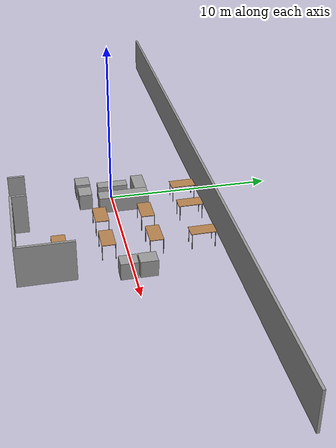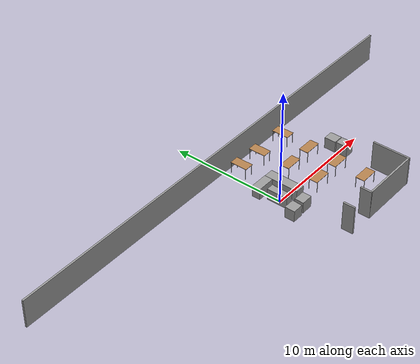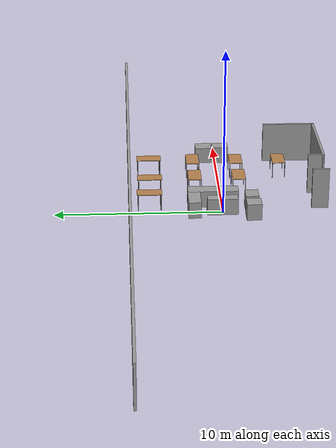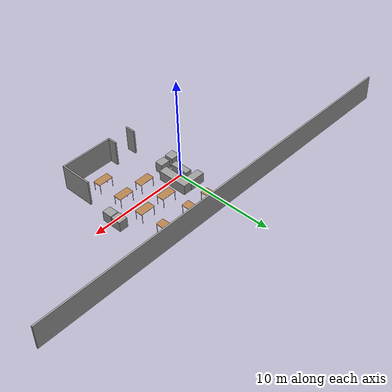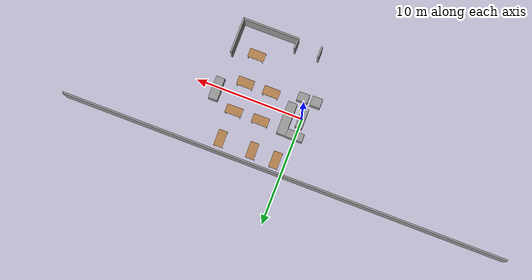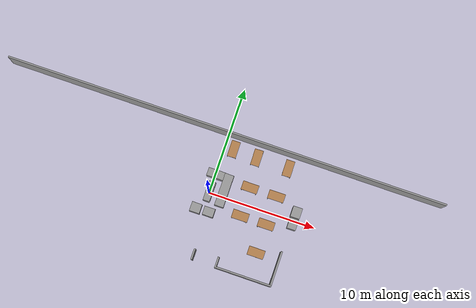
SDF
<sdf version="1.7">
 <model name="turtlebot3_world_V3">
  <link name="link_0_clone">
   <inertial>
    <mass>2.54901</mass>
    <inertia><ixx>2.15345</ixx><ixy>0</ixy><ixz>0</ixz><iyy>0.363547</iyy><iyz>0</iyz><izz>2.09216</izz></inertia>
   </inertial>
   <pose>1.24013 0.549487 0.5 0 -0 0</pose>
   <visual name="visual">
    <geometry><box><size>0.843491 3.02289 1</size></box></geometry>
    <material>
     <lighting>1</lighting>
     <script><uri>file://media/materials/scripts/gazebo.material</uri><name>Gazebo/Grey</name></script>
     <shader type="pixel"/>
    </material>
   </visual>
   <collision name="collision">
    <geometry><box><size>0.843491 3.02289 1</size></box></geometry>
    <surface>
     <friction>
      <ode><mu>1</mu><mu2>1</mu2><fdir1>0 0 0</fdir1><slip1>0</slip1><slip2>0</slip2></ode>
      <torsional>
       <coefficient>1</coefficient>
       <patch_radius>0</patch_radius>
       <surface_radius>0</surface_radius>
       <use_patch_radius>1</use_patch_radius>
       <ode><slip>0</slip></ode>
      </torsional>
     </friction>
     <bounce><restitution_coefficient>0</restitution_coefficient><threshold>1e+06</threshold></bounce>
     <contact>
      <collide_without_contact>0</collide_without_contact>
      <collide_without_contact_bitmask>1</collide_without_contact_bitmask>
      <collide_bitmask>1</collide_bitmask>
      <ode>
       <soft_cfm>0</soft_cfm>
       <soft_erp>0.2</soft_erp>
       <kp>1e+13</kp>
       <kd>1</kd>
       <max_vel>0.01</max_vel>
       <min_depth>0</min_depth>
      </ode>
      <bullet>
       <split_impulse>1</split_impulse>
       <split_impulse_penetration_threshold>-0.01</split_impulse_penetration_threshold>
       <soft_cfm>0</soft_cfm>
       <soft_erp>0.2</soft_erp>
       <kp>1e+13</kp>
       <kd>1</kd>
      </bullet>
     </contact>
    </surface>
   </collision>
  </link>
  <link name="link_1">
   <inertial>
    <mass>1.15926</mass>
    <inertia>
     <ixx>0.149986</ixx>
     <ixy>0</ixy>
     <ixz>0</ixz>
     <iyy>0.331691</iyy>
     <iyz>0</iyz>
     <izz>0.288468</izz>
    </inertia>
   </inertial>
   <pose>0.051476 1.71415 0.5 0 -0 0</pose>
   <visual name="visual">
    <geometry><box><size>1.55997 0.743356 1</size></box></geometry>
    <material>
     <lighting>1</lighting>
     <script><uri>file://media/materials/scripts/gazebo.material</uri><name>Gazebo/Grey</name></script>
     <shader type="pixel"/>
    </material>
   </visual>
   <collision name="collision">
    <geometry><box><size>1.55997 0.743356 1</size></box></geometry>
    <surface>
     <friction>
      <ode><mu>1</mu><mu2>1</mu2><fdir1>0 0 0</fdir1><slip1>0</slip1><slip2>0</slip2></ode>
      <torsional>
       <coefficient>1</coefficient>
       <patch_radius>0</patch_radius>
       <surface_radius>0</surface_radius>
       <use_patch_radius>1</use_patch_radius>
       <ode><slip>0</slip></ode>
      </torsional>
     </friction>
     <bounce><restitution_coefficient>0</restitution_coefficient><threshold>1e+06</threshold></bounce>
     <contact>
      <collide_without_contact>0</collide_without_contact>
      <collide_without_contact_bitmask>1</collide_without_contact_bitmask>
      <collide_bitmask>1</collide_bitmask>
      <ode>
       <soft_cfm>0</soft_cfm>
       <soft_erp>0.2</soft_erp>
       <kp>1e+13</kp>
       <kd>1</kd>
       <max_vel>0.01</max_vel>
       <min_depth>0</min_depth>
      </ode>
      <bullet>
       <split_impulse>1</split_impulse>
       <split_impulse_penetration_threshold>-0.01</split_impulse_penetration_threshold>
       <soft_cfm>0</soft_cfm>
       <soft_erp>0.2</soft_erp>
       <kp>1e+13</kp>
       <kd>1</kd>
      </bullet>
     </contact>
    </surface>
   </collision>
  </link>
  <link name="link_10">
   <inertial>
    <mass>0.858538</mass>
    <inertia>
     <ixx>0.14309</ixx>
     <ixy>0</ixy>
     <ixz>0</ixz>
     <iyy>0.124282</iyy>
     <iyz>0</iyz>
     <izz>0.124282</izz>
    </inertia>
   </inertial>
   <pose>8.01063 0.76269 0.5 0 -0 0</pose>
   <visual name="visual">
    <geometry><box><size>0.858553 1 1</size></box></geometry>
    <material>
     <lighting>1</lighting>
     <script><uri>file://media/materials/scripts/gazebo.material</uri><name>Gazebo/Grey</name></script>
     <shader type="pixel"/>
    </material>
   </visual>
   <collision name="collision">
    <geometry><box><size>0.858553 1 1</size></box></geometry>
    <surface>
     <friction>
      <ode><mu>1</mu><mu2>1</mu2><fdir1>0 0 0</fdir1><slip1>0</slip1><slip2>0</slip2></ode>
      <torsional>
       <coefficient>1</coefficient>
       <patch_radius>0</patch_radius>
       <surface_radius>0</surface_radius>
       <use_patch_radius>1</use_patch_radius>
       <ode><slip>0</slip></ode>
      </torsional>
     </friction>
     <bounce><restitution_coefficient>0</restitution_coefficient><threshold>1e+06</threshold></bounce>
     <contact>
      <collide_without_contact>0</collide_without_contact>
      <collide_without_contact_bitmask>1</collide_without_contact_bitmask>
      <collide_bitmask>1</collide_bitmask>
      <ode>
       <soft_cfm>0</soft_cfm>
       <soft_erp>0.2</soft_erp>
       <kp>1e+13</kp>
       <kd>1</kd>
       <max_vel>0.01</max_vel>
       <min_depth>0</min_depth>
      </ode>
      <bullet>
       <split_impulse>1</split_impulse>
       <split_impulse_penetration_threshold>-0.01</split_impulse_penetration_threshold>
       <soft_cfm>0</soft_cfm>
       <soft_erp>0.2</soft_erp>
       <kp>1e+13</kp>
       <kd>1</kd>
      </bullet>
     </contact>
    </surface>
   </collision>
  </link>
  <link name="link_11">
   <inertial>
    <mass>0.829607</mass>
    <inertia>
     <ixx>0.14157</ixx>
     <ixy>0</ixy>
     <ixz>0</ixz>
     <iyy>0.117869</iyy>
     <iyz>0</iyz>
     <izz>0.114567</izz>
    </inertia>
   </inertial>
   <pose>8.02619 -0.313969 0.5 0 -0 0</pose>
   <visual name="visual">
    <geometry><box><size>0.81066 1 1.0236</size></box></geometry>
    <material>
     <lighting>1</lighting>
     <script><uri>file://media/materials/scripts/gazebo.material</uri><name>Gazebo/Grey</name></script>
     <shader type="pixel"/>
    </material>
   </visual>
   <collision name="collision">
    <geometry><box><size>0.81066 1 1.0236</size></box></geometry>
    <surface>
     <friction>
      <ode><mu>1</mu><mu2>1</mu2><fdir1>0 0 0</fdir1><slip1>0</slip1><slip2>0</slip2></ode>
      <torsional>
       <coefficient>1</coefficient>
       <patch_radius>0</patch_radius>
       <surface_radius>0</surface_radius>
       <use_patch_radius>1</use_patch_radius>
       <ode><slip>0</slip></ode>
      </torsional>
     </friction>
     <bounce><restitution_coefficient>0</restitution_coefficient><threshold>1e+06</threshold></bounce>
     <contact>
      <collide_without_contact>0</collide_without_contact>
      <collide_without_contact_bitmask>1</collide_without_contact_bitmask>
      <collide_bitmask>1</collide_bitmask>
      <ode>
       <soft_cfm>0</soft_cfm>
       <soft_erp>0.2</soft_erp>
       <kp>1e+13</kp>
       <kd>1</kd>
       <max_vel>0.01</max_vel>
       <min_depth>0</min_depth>
      </ode>
      <bullet>
       <split_impulse>1</split_impulse>
       <split_impulse_penetration_threshold>-0.01</split_impulse_penetration_threshold>
       <soft_cfm>0</soft_cfm>
       <soft_erp>0.2</soft_erp>
       <kp>1e+13</kp>
       <kd>1</kd>
      </bullet>
     </contact>
    </surface>
   </collision>
  </link>
  <link name="link_2">
   <inertial>
    <mass>1.15777</mass>
    <inertia>
     <ixx>0.418048</ixx>
     <ixy>0</ixy>
     <ixz>0</ixz>
     <iyy>0.135287</iyy>
     <iyz>0</iyz>
     <izz>0.360373</izz>
    </inertia>
   </inertial>
   <pose>0.004407 0.050983 0.5 0 -0 0</pose>
   <visual name="visual">
    <geometry><box><size>0.634205 1.82564 1</size></box></geometry>
    <material>
     <lighting>1</lighting>
     <script><uri>file://media/materials/scripts/gazebo.material</uri><name>Gazebo/Grey</name></script>
     <shader type="pixel"/>
    </material>
   </visual>
   <collision name="collision">
    <geometry><box><size>0.634205 1.82564 1</size></box></geometry>
    <surface>
     <friction>
      <ode><mu>1</mu><mu2>1</mu2><fdir1>0 0 0</fdir1><slip1>0</slip1><slip2>0</slip2></ode>
      <torsional>
       <coefficient>1</coefficient>
       <patch_radius>0</patch_radius>
       <surface_radius>0</surface_radius>
       <use_patch_radius>1</use_patch_radius>
       <ode><slip>0</slip></ode>
      </torsional>
     </friction>
     <bounce><restitution_coefficient>0</restitution_coefficient><threshold>1e+06</threshold></bounce>
     <contact>
      <collide_without_contact>0</collide_without_contact>
      <collide_without_contact_bitmask>1</collide_without_contact_bitmask>
      <collide_bitmask>1</collide_bitmask>
      <ode>
       <soft_cfm>0</soft_cfm>
       <soft_erp>0.2</soft_erp>
       <kp>1e+13</kp>
       <kd>1</kd>
       <max_vel>0.01</max_vel>
       <min_depth>0</min_depth>
      </ode>
      <bullet>
       <split_impulse>1</split_impulse>
       <split_impulse_penetration_threshold>-0.01</split_impulse_penetration_threshold>
       <soft_cfm>0</soft_cfm>
       <soft_erp>0.2</soft_erp>
       <kp>1e+13</kp>
       <kd>1</kd>
      </bullet>
     </contact>
    </surface>
   </collision>
  </link>
  <link name="link_3">
   <inertial>
    <mass>0.787073</mass>
    <inertia>
     <ixx>0.106222</ixx>
     <ixy>0</ixy>
     <ixz>0</ixz>
     <iyy>0.131179</iyy>
     <iyz>0</iyz>
     <izz>0.106222</izz>
    </inertia>
   </inertial>
   <pose>0.554076 -1.72385 0.5 0 -0 0</pose>
   <visual name="visual">
    <geometry><box><size>1 0.787081 1</size></box></geometry>
    <material>
     <lighting>1</lighting>
     <script><uri>file://media/materials/scripts/gazebo.material</uri><name>Gazebo/Grey</name></script>
     <shader type="pixel"/>
    </material>
   </visual>
   <collision name="collision">
    <geometry><box><size>1 0.787081 1</size></box></geometry>
    <surface>
     <friction>
      <ode><mu>1</mu><mu2>1</mu2><fdir1>0 0 0</fdir1><slip1>0</slip1><slip2>0</slip2></ode>
      <torsional>
       <coefficient>1</coefficient>
       <patch_radius>0</patch_radius>
       <surface_radius>0</surface_radius>
       <use_patch_radius>1</use_patch_radius>
       <ode><slip>0</slip></ode>
      </torsional>
     </friction>
     <bounce><restitution_coefficient>0</restitution_coefficient><threshold>1e+06</threshold></bounce>
     <contact>
      <collide_without_contact>0</collide_without_contact>
      <collide_without_contact_bitmask>1</collide_without_contact_bitmask>
      <collide_bitmask>1</collide_bitmask>
      <ode>
       <soft_cfm>0</soft_cfm>
       <soft_erp>0.2</soft_erp>
       <kp>1e+13</kp>
       <kd>1</kd>
       <max_vel>0.01</max_vel>
       <min_depth>0</min_depth>
      </ode>
      <bullet>
       <split_impulse>1</split_impulse>
       <split_impulse_penetration_threshold>-0.01</split_impulse_penetration_threshold>
       <soft_cfm>0</soft_cfm>
       <soft_erp>0.2</soft_erp>
       <kp>1e+13</kp>
       <kd>1</kd>
      </bullet>
     </contact>
    </surface>
   </collision>
  </link>
  <link name="link_4">
   <inertial>
    <mass>0.823135</mass>
    <inertia>
     <ixx>0.12112</ixx>
     <ixy>0</ixy>
     <ixz>0</ixz>
     <iyy>0.129293</iyy>
     <iyz>0</iyz>
     <izz>0.113223</izz>
    </inertia>
   </inertial>
   <pose>-0.670921 -1.74276 0.5 0 -0 0</pose>
   <visual name="visual">
    <geometry><box><size>0.940681 0.875064 1</size></box></geometry>
    <material>
     <lighting>1</lighting>
     <script><uri>file://media/materials/scripts/gazebo.material</uri><name>Gazebo/Grey</name></script>
     <shader type="pixel"/>
    </material>
   </visual>
   <collision name="collision">
    <geometry><box><size>0.940681 0.875064 1</size></box></geometry>
    <surface>
     <friction>
      <ode><mu>1</mu><mu2>1</mu2><fdir1>0 0 0</fdir1><slip1>0</slip1><slip2>0</slip2></ode>
      <torsional>
       <coefficient>1</coefficient>
       <patch_radius>0</patch_radius>
       <surface_radius>0</surface_radius>
       <use_patch_radius>1</use_patch_radius>
       <ode><slip>0</slip></ode>
      </torsional>
     </friction>
     <bounce><restitution_coefficient>0</restitution_coefficient><threshold>1e+06</threshold></bounce>
     <contact>
      <collide_without_contact>0</collide_without_contact>
      <collide_without_contact_bitmask>1</collide_without_contact_bitmask>
      <collide_bitmask>1</collide_bitmask>
      <ode>
       <soft_cfm>0</soft_cfm>
       <soft_erp>0.2</soft_erp>
       <kp>1e+13</kp>
       <kd>1</kd>
       <max_vel>0.01</max_vel>
       <min_depth>0</min_depth>
      </ode>
      <bullet>
       <split_impulse>1</split_impulse>
       <split_impulse_penetration_threshold>-0.01</split_impulse_penetration_threshold>
       <soft_cfm>0</soft_cfm>
       <soft_erp>0.2</soft_erp>
       <kp>1e+13</kp>
       <kd>1</kd>
      </bullet>
     </contact>
    </surface>
   </collision>
  </link>
  <link name="turtlebot3_world_1::The_Project_Hub_Building::Wall_10">
   <pose>7.84408 -4.67436 0 0 -0 1.5708</pose>
   <visual name="Wall_10_Visual">
    <pose>0 0 1.25 0 -0 0</pose>
    <geometry><box><size>3.25 0.15 2.5</size></box></geometry>
    <material>
     <script><uri>file://media/materials/scripts/gazebo.material</uri><name>Gazebo/Grey</name></script>
     <ambient>1 1 1 1</ambient>
     <shader type="pixel"/>
    </material>
    <meta><layer>0</layer></meta>
   </visual>
   <collision name="Wall_10_Collision">
    <pose>0 0 1.25 0 -0 0</pose>
    <geometry><box><size>3.25 0.15 2.5</size></box></geometry>
    <surface>
     <friction>
      <ode><mu>1</mu><mu2>1</mu2><fdir1>0 0 0</fdir1><slip1>0</slip1><slip2>0</slip2></ode>
      <torsional>
       <coefficient>1</coefficient>
       <patch_radius>0</patch_radius>
       <surface_radius>0</surface_radius>
       <use_patch_radius>1</use_patch_radius>
       <ode><slip>0</slip></ode>
      </torsional>
     </friction>
     <bounce><restitution_coefficient>0</restitution_coefficient><threshold>1e+06</threshold></bounce>
     <contact>
      <collide_without_contact>0</collide_without_contact>
      <collide_without_contact_bitmask>1</collide_without_contact_bitmask>
      <collide_bitmask>1</collide_bitmask>
      <ode>
       <soft_cfm>0</soft_cfm>
       <soft_erp>0.2</soft_erp>
       <kp>1e+13</kp>
       <kd>1</kd>
       <max_vel>0.01</max_vel>
       <min_depth>0</min_depth>
      </ode>
      <bullet>
       <split_impulse>1</split_impulse>
       <split_impulse_penetration_threshold>-0.01</split_impulse_penetration_threshold>
       <soft_cfm>0</soft_cfm>
       <soft_erp>0.2</soft_erp>
       <kp>1e+13</kp>
       <kd>1</kd>
      </bullet>
     </contact>
    </surface>
   </collision>
  </link>
  <link name="turtlebot3_world_1::The_Project_Hub_Building::Wall_13">
   <pose>-0.327684 5.5353 0 0 -0 0</pose>
   <visual name="Wall_13_Visual">
    <pose>0 0 1.25 0 -0 0</pose>
    <geometry><box><size>41.25 0.15 2.5</size></box></geometry>
    <material>
     <script><uri>file://media/materials/scripts/gazebo.material</uri><name>Gazebo/Grey</name></script>
     <ambient>1 1 1 1</ambient>
     <shader type="pixel"/>
    </material>
    <meta><layer>0</layer></meta>
   </visual>
   <collision name="Wall_13_Collision">
    <pose>0 0 1.25 0 -0 0</pose>
    <geometry><box><size>41.25 0.15 2.5</size></box></geometry>
    <surface>
     <friction>
      <ode><mu>1</mu><mu2>1</mu2><fdir1>0 0 0</fdir1><slip1>0</slip1><slip2>0</slip2></ode>
      <torsional>
       <coefficient>1</coefficient>
       <patch_radius>0</patch_radius>
       <surface_radius>0</surface_radius>
       <use_patch_radius>1</use_patch_radius>
       <ode><slip>0</slip></ode>
      </torsional>
     </friction>
     <bounce><restitution_coefficient>0</restitution_coefficient><threshold>1e+06</threshold></bounce>
     <contact>
      <collide_without_contact>0</collide_without_contact>
      <collide_without_contact_bitmask>1</collide_without_contact_bitmask>
      <collide_bitmask>1</collide_bitmask>
      <ode>
       <soft_cfm>0</soft_cfm>
       <soft_erp>0.2</soft_erp>
       <kp>1e+13</kp>
       <kd>1</kd>
       <max_vel>0.01</max_vel>
       <min_depth>0</min_depth>
      </ode>
      <bullet>
       <split_impulse>1</split_impulse>
       <split_impulse_penetration_threshold>-0.01</split_impulse_penetration_threshold>
       <soft_cfm>0</soft_cfm>
       <soft_erp>0.2</soft_erp>
       <kp>1e+13</kp>
       <kd>1</kd>
      </bullet>
     </contact>
    </surface>
   </collision>
  </link>
  <link name="turtlebot3_world_1::The_Project_Hub_Building::Wall_6">
   <pose>0.535777 -5.79277 0 0 -0 1.5708</pose>
   <visual name="Wall_6_Visual">
    <pose>0 0 1.25 0 -0 0</pose>
    <geometry><box><size>1 0.15 2.5</size></box></geometry>
    <material>
     <script><uri>file://media/materials/scripts/gazebo.material</uri><name>Gazebo/Grey</name></script>
     <ambient>1 1 1 1</ambient>
     <shader type="pixel"/>
    </material>
    <meta><layer>0</layer></meta>
   </visual>
   <collision name="Wall_6_Collision">
    <pose>0 0 1.25 0 -0 0</pose>
    <geometry><box><size>1 0.15 2.5</size></box></geometry>
    <surface>
     <friction>
      <ode><mu>1</mu><mu2>1</mu2><fdir1>0 0 0</fdir1><slip1>0</slip1><slip2>0</slip2></ode>
      <torsional>
       <coefficient>1</coefficient>
       <patch_radius>0</patch_radius>
       <surface_radius>0</surface_radius>
       <use_patch_radius>1</use_patch_radius>
       <ode><slip>0</slip></ode>
      </torsional>
     </friction>
     <bounce><restitution_coefficient>0</restitution_coefficient><threshold>1e+06</threshold></bounce>
     <contact>
      <collide_without_contact>0</collide_without_contact>
      <collide_without_contact_bitmask>1</collide_without_contact_bitmask>
      <collide_bitmask>1</collide_bitmask>
      <ode>
       <soft_cfm>0</soft_cfm>
       <soft_erp>0.2</soft_erp>
       <kp>1e+13</kp>
       <kd>1</kd>
       <max_vel>0.01</max_vel>
       <min_depth>0</min_depth>
      </ode>
      <bullet>
       <split_impulse>1</split_impulse>
       <split_impulse_penetration_threshold>-0.01</split_impulse_penetration_threshold>
       <soft_cfm>0</soft_cfm>
       <soft_erp>0.2</soft_erp>
       <kp>1e+13</kp>
       <kd>1</kd>
      </bullet>
     </contact>
    </surface>
   </collision>
  </link>
  <link name="turtlebot3_world_1::The_Project_Hub_Building::Wall_8">
   <pose>2.74408 -5.79936 0 0 0 -1.5708</pose>
   <visual name="Wall_8_Visual">
    <pose>0 0 1.25 0 -0 0</pose>
    <geometry><box><size>1 0.15 2.5</size></box></geometry>
    <material>
     <script><uri>file://media/materials/scripts/gazebo.material</uri><name>Gazebo/Grey</name></script>
     <ambient>1 1 1 1</ambient>
     <shader type="pixel"/>
    </material>
    <meta><layer>0</layer></meta>
   </visual>
   <collision name="Wall_8_Collision">
    <pose>0 0 1.25 0 -0 0</pose>
    <geometry><box><size>1 0.15 2.5</size></box></geometry>
    <surface>
     <friction>
      <ode><mu>1</mu><mu2>1</mu2><fdir1>0 0 0</fdir1><slip1>0</slip1><slip2>0</slip2></ode>
      <torsional>
       <coefficient>1</coefficient>
       <patch_radius>0</patch_radius>
       <surface_radius>0</surface_radius>
       <use_patch_radius>1</use_patch_radius>
       <ode><slip>0</slip></ode>
      </torsional>
     </friction>
     <bounce><restitution_coefficient>0</restitution_coefficient><threshold>1e+06</threshold></bounce>
     <contact>
      <collide_without_contact>0</collide_without_contact>
      <collide_without_contact_bitmask>1</collide_without_contact_bitmask>
      <collide_bitmask>1</collide_bitmask>
      <ode>
       <soft_cfm>0</soft_cfm>
       <soft_erp>0.2</soft_erp>
       <kp>1e+13</kp>
       <kd>1</kd>
       <max_vel>0.01</max_vel>
       <min_depth>0</min_depth>
      </ode>
      <bullet>
       <split_impulse>1</split_impulse>
       <split_impulse_penetration_threshold>-0.01</split_impulse_penetration_threshold>
       <soft_cfm>0</soft_cfm>
       <soft_erp>0.2</soft_erp>
       <kp>1e+13</kp>
       <kd>1</kd>
      </bullet>
     </contact>
    </surface>
   </collision>
  </link>
  <link name="turtlebot3_world_1::The_Project_Hub_Building::Wall_9">
   <pose>5.29408 -6.22436 0 0 -0 0</pose>
   <visual name="Wall_9_Visual">
    <pose>0 0 1.25 0 -0 0</pose>
    <geometry><box><size>5.25 0.15 2.5</size></box></geometry>
    <material>
     <script><uri>file://media/materials/scripts/gazebo.material</uri><name>Gazebo/Grey</name></script>
     <ambient>1 1 1 1</ambient>
     <shader type="pixel"/>
    </material>
    <meta><layer>0</layer></meta>
   </visual>
   <collision name="Wall_9_Collision">
    <pose>0 0 1.25 0 -0 0</pose>
    <geometry><box><size>5.25 0.15 2.5</size></box></geometry>
    <surface>
     <friction>
      <ode><mu>1</mu><mu2>1</mu2><fdir1>0 0 0</fdir1><slip1>0</slip1><slip2>0</slip2></ode>
      <torsional>
       <coefficient>1</coefficient>
       <patch_radius>0</patch_radius>
       <surface_radius>0</surface_radius>
       <use_patch_radius>1</use_patch_radius>
       <ode><slip>0</slip></ode>
      </torsional>
     </friction>
     <bounce><restitution_coefficient>0</restitution_coefficient><threshold>1e+06</threshold></bounce>
     <contact>
      <collide_without_contact>0</collide_without_contact>
      <collide_without_contact_bitmask>1</collide_without_contact_bitmask>
      <collide_bitmask>1</collide_bitmask>
      <ode>
       <soft_cfm>0</soft_cfm>
       <soft_erp>0.2</soft_erp>
       <kp>1e+13</kp>
       <kd>1</kd>
       <max_vel>0.01</max_vel>
       <min_depth>0</min_depth>
      </ode>
      <bullet>
       <split_impulse>1</split_impulse>
       <split_impulse_penetration_threshold>-0.01</split_impulse_penetration_threshold>
       <soft_cfm>0</soft_cfm>
       <soft_erp>0.2</soft_erp>
       <kp>1e+13</kp>
       <kd>1</kd>
      </bullet>
     </contact>
    </surface>
   </collision>
  </link>
  <model name="table_0_clone_3">
   <static>1</static>
   <link name="link">
    <collision name="surface">
     <pose>0 0 1 0 -0 0</pose>
     <geometry><box><size>1.5 0.8 0.03</size></box></geometry>
     <surface><friction><ode><mu>0.6</mu><mu2>0.6</mu2></ode></friction></surface>
    </collision>
    <visual name="visual1">
     <pose>0 0 1 0 -0 0</pose>
     <geometry><box><size>1.5 0.8 0.03</size></box></geometry>
     <material>
      <script><uri>file://media/materials/scripts/gazebo.material</uri><name>Gazebo/Wood</name></script>
     </material>
    </visual>
    <collision name="front_left_leg">
     <pose>0.68 0.38 0.5 0 -0 0</pose>
     <geometry><cylinder><radius>0.02</radius><length>1</length></cylinder></geometry>
    </collision>
    <visual name="front_left_leg">
     <pose>0.68 0.38 0.5 0 -0 0</pose>
     <geometry><cylinder><radius>0.02</radius><length>1</length></cylinder></geometry>
     <material>
      <script><uri>file://media/materials/scripts/gazebo.material</uri><name>Gazebo/Grey</name></script>
     </material>
    </visual>
    <collision name="front_right_leg">
     <pose>0.68 -0.38 0.5 0 -0 0</pose>
     <geometry><cylinder><radius>0.02</radius><length>1</length></cylinder></geometry>
    </collision>
    <visual name="front_right_leg">
     <pose>0.68 -0.38 0.5 0 -0 0</pose>
     <geometry><cylinder><radius>0.02</radius><length>1</length></cylinder></geometry>
     <material>
      <script><uri>file://media/materials/scripts/gazebo.material</uri><name>Gazebo/Grey</name></script>
     </material>
    </visual>
    <collision name="back_right_leg">
     <pose>-0.68 -0.38 0.5 0 -0 0</pose>
     <geometry><cylinder><radius>0.02</radius><length>1</length></cylinder></geometry>
    </collision>
    <visual name="back_right_leg">
     <pose>-0.68 -0.38 0.5 0 -0 0</pose>
     <geometry><cylinder><radius>0.02</radius><length>1</length></cylinder></geometry>
     <material>
      <script><uri>file://media/materials/scripts/gazebo.material</uri><name>Gazebo/Grey</name></script>
     </material>
    </visual>
    <collision name="back_left_leg">
     <pose>-0.68 0.38 0.5 0 -0 0</pose>
     <geometry><cylinder><radius>0.02</radius><length>1</length></cylinder></geometry>
    </collision>
    <visual name="back_left_leg">
     <pose>-0.68 0.38 0.5 0 -0 0</pose>
     <geometry><cylinder><radius>0.02</radius><length>1</length></cylinder></geometry>
     <material>
      <script><uri>file://media/materials/scripts/gazebo.material</uri><name>Gazebo/Grey</name></script>
     </material>
    </visual>
   </link>
   <pose>0.853225 4.35643 0 0 -0 1.58428</pose>
  </model>
  <model name="table_0_clone_4">
   <static>1</static>
   <link name="link">
    <collision name="surface">
     <pose>0 0 1 0 -0 0</pose>
     <geometry><box><size>1.5 0.8 0.03</size></box></geometry>
     <surface><friction><ode><mu>0.6</mu><mu2>0.6</mu2></ode></friction></surface>
    </collision>
    <visual name="visual1">
     <pose>0 0 1 0 -0 0</pose>
     <geometry><box><size>1.5 0.8 0.03</size></box></geometry>
     <material>
      <script><uri>file://media/materials/scripts/gazebo.material</uri><name>Gazebo/Wood</name></script>
     </material>
    </visual>
    <collision name="front_left_leg">
     <pose>0.68 0.38 0.5 0 -0 0</pose>
     <geometry><cylinder><radius>0.02</radius><length>1</length></cylinder></geometry>
    </collision>
    <visual name="front_left_leg">
     <pose>0.68 0.38 0.5 0 -0 0</pose>
     <geometry><cylinder><radius>0.02</radius><length>1</length></cylinder></geometry>
     <material>
      <script><uri>file://media/materials/scripts/gazebo.material</uri><name>Gazebo/Grey</name></script>
     </material>
    </visual>
    <collision name="front_right_leg">
     <pose>0.68 -0.38 0.5 0 -0 0</pose>
     <geometry><cylinder><radius>0.02</radius><length>1</length></cylinder></geometry>
    </collision>
    <visual name="front_right_leg">
     <pose>0.68 -0.38 0.5 0 -0 0</pose>
     <geometry><cylinder><radius>0.02</radius><length>1</length></cylinder></geometry>
     <material>
      <script><uri>file://media/materials/scripts/gazebo.material</uri><name>Gazebo/Grey</name></script>
     </material>
    </visual>
    <collision name="back_right_leg">
     <pose>-0.68 -0.38 0.5 0 -0 0</pose>
     <geometry><cylinder><radius>0.02</radius><length>1</length></cylinder></geometry>
    </collision>
    <visual name="back_right_leg">
     <pose>-0.68 -0.38 0.5 0 -0 0</pose>
     <geometry><cylinder><radius>0.02</radius><length>1</length></cylinder></geometry>
     <material>
      <script><uri>file://media/materials/scripts/gazebo.material</uri><name>Gazebo/Grey</name></script>
     </material>
    </visual>
    <collision name="back_left_leg">
     <pose>-0.68 0.38 0.5 0 -0 0</pose>
     <geometry><cylinder><radius>0.02</radius><length>1</length></cylinder></geometry>
    </collision>
    <visual name="back_left_leg">
     <pose>-0.68 0.38 0.5 0 -0 0</pose>
     <geometry><cylinder><radius>0.02</radius><length>1</length></cylinder></geometry>
     <material>
      <script><uri>file://media/materials/scripts/gazebo.material</uri><name>Gazebo/Grey</name></script>
     </material>
    </visual>
   </link>
   <pose>3.07572 4.29469 0 0 -0 1.58428</pose>
  </model>
  <model name="table_0_clone_5">
   <static>1</static>
   <link name="link">
    <collision name="surface">
     <pose>0 0 1 0 -0 0</pose>
     <geometry><box><size>1.5 0.8 0.03</size></box></geometry>
     <surface><friction><ode><mu>0.6</mu><mu2>0.6</mu2></ode></friction></surface>
    </collision>
    <visual name="visual1">
     <pose>0 0 1 0 -0 0</pose>
     <geometry><box><size>1.5 0.8 0.03</size></box></geometry>
     <material>
      <script><uri>file://media/materials/scripts/gazebo.material</uri><name>Gazebo/Wood</name></script>
     </material>
    </visual>
    <collision name="front_left_leg">
     <pose>0.68 0.38 0.5 0 -0 0</pose>
     <geometry><cylinder><radius>0.02</radius><length>1</length></cylinder></geometry>
    </collision>
    <visual name="front_left_leg">
     <pose>0.68 0.38 0.5 0 -0 0</pose>
     <geometry><cylinder><radius>0.02</radius><length>1</length></cylinder></geometry>
     <material>
      <script><uri>file://media/materials/scripts/gazebo.material</uri><name>Gazebo/Grey</name></script>
     </material>
    </visual>
    <collision name="front_right_leg">
     <pose>0.68 -0.38 0.5 0 -0 0</pose>
     <geometry><cylinder><radius>0.02</radius><length>1</length></cylinder></geometry>
    </collision>
    <visual name="front_right_leg">
     <pose>0.68 -0.38 0.5 0 -0 0</pose>
     <geometry><cylinder><radius>0.02</radius><length>1</length></cylinder></geometry>
     <material>
      <script><uri>file://media/materials/scripts/gazebo.material</uri><name>Gazebo/Grey</name></script>
     </material>
    </visual>
    <collision name="back_right_leg">
     <pose>-0.68 -0.38 0.5 0 -0 0</pose>
     <geometry><cylinder><radius>0.02</radius><length>1</length></cylinder></geometry>
    </collision>
    <visual name="back_right_leg">
     <pose>-0.68 -0.38 0.5 0 -0 0</pose>
     <geometry><cylinder><radius>0.02</radius><length>1</length></cylinder></geometry>
     <material>
      <script><uri>file://media/materials/scripts/gazebo.material</uri><name>Gazebo/Grey</name></script>
     </material>
    </visual>
    <collision name="back_left_leg">
     <pose>-0.68 0.38 0.5 0 -0 0</pose>
     <geometry><cylinder><radius>0.02</radius><length>1</length></cylinder></geometry>
    </collision>
    <visual name="back_left_leg">
     <pose>-0.68 0.38 0.5 0 -0 0</pose>
     <geometry><cylinder><radius>0.02</radius><length>1</length></cylinder></geometry>
     <material>
      <script><uri>file://media/materials/scripts/gazebo.material</uri><name>Gazebo/Grey</name></script>
     </material>
    </visual>
   </link>
   <pose>6.07369 4.28672 0 0 -0 1.58428</pose>
  </model>
  <model name="table_clone_5">
   <static>1</static>
   <link name="link">
    <collision name="surface">
     <pose>0 0 1 0 -0 0</pose>
     <geometry><box><size>1.5 0.8 0.03</size></box></geometry>
     <surface><friction><ode><mu>0.6</mu><mu2>0.6</mu2></ode></friction></surface>
    </collision>
    <visual name="visual1">
     <pose>0 0 1 0 -0 0</pose>
     <geometry><box><size>1.5 0.8 0.03</size></box></geometry>
     <material>
      <script><uri>file://media/materials/scripts/gazebo.material</uri><name>Gazebo/Wood</name></script>
     </material>
    </visual>
    <collision name="front_left_leg">
     <pose>0.68 0.38 0.5 0 -0 0</pose>
     <geometry><cylinder><radius>0.02</radius><length>1</length></cylinder></geometry>
    </collision>
    <visual name="front_left_leg">
     <pose>0.68 0.38 0.5 0 -0 0</pose>
     <geometry><cylinder><radius>0.02</radius><length>1</length></cylinder></geometry>
     <material>
      <script><uri>file://media/materials/scripts/gazebo.material</uri><name>Gazebo/Grey</name></script>
     </material>
    </visual>
    <collision name="front_right_leg">
     <pose>0.68 -0.38 0.5 0 -0 0</pose>
     <geometry><cylinder><radius>0.02</radius><length>1</length></cylinder></geometry>
    </collision>
    <visual name="front_right_leg">
     <pose>0.68 -0.38 0.5 0 -0 0</pose>
     <geometry><cylinder><radius>0.02</radius><length>1</length></cylinder></geometry>
     <material>
      <script><uri>file://media/materials/scripts/gazebo.material</uri><name>Gazebo/Grey</name></script>
     </material>
    </visual>
    <collision name="back_right_leg">
     <pose>-0.68 -0.38 0.5 0 -0 0</pose>
     <geometry><cylinder><radius>0.02</radius><length>1</length></cylinder></geometry>
    </collision>
    <visual name="back_right_leg">
     <pose>-0.68 -0.38 0.5 0 -0 0</pose>
     <geometry><cylinder><radius>0.02</radius><length>1</length></cylinder></geometry>
     <material>
      <script><uri>file://media/materials/scripts/gazebo.material</uri><name>Gazebo/Grey</name></script>
     </material>
    </visual>
    <collision name="back_left_leg">
     <pose>-0.68 0.38 0.5 0 -0 0</pose>
     <geometry><cylinder><radius>0.02</radius><length>1</length></cylinder></geometry>
    </collision>
    <visual name="back_left_leg">
     <pose>-0.68 0.38 0.5 0 -0 0</pose>
     <geometry><cylinder><radius>0.02</radius><length>1</length></cylinder></geometry>
     <material>
      <script><uri>file://media/materials/scripts/gazebo.material</uri><name>Gazebo/Grey</name></script>
     </material>
    </visual>
   </link>
   <pose>3.35272 1.54335 0 0 -0 0</pose>
  </model>
  <model name="table_clone_6">
   <static>1</static>
   <link name="link">
    <collision name="surface">
     <pose>0 0 1 0 -0 0</pose>
     <geometry><box><size>1.5 0.8 0.03</size></box></geometry>
     <surface><friction><ode><mu>0.6</mu><mu2>0.6</mu2></ode></friction></surface>
    </collision>
    <visual name="visual1">
     <pose>0 0 1 0 -0 0</pose>
     <geometry><box><size>1.5 0.8 0.03</size></box></geometry>
     <material>
      <script><uri>file://media/materials/scripts/gazebo.material</uri><name>Gazebo/Wood</name></script>
     </material>
    </visual>
    <collision name="front_left_leg">
     <pose>0.68 0.38 0.5 0 -0 0</pose>
     <geometry><cylinder><radius>0.02</radius><length>1</length></cylinder></geometry>
    </collision>
    <visual name="front_left_leg">
     <pose>0.68 0.38 0.5 0 -0 0</pose>
     <geometry><cylinder><radius>0.02</radius><length>1</length></cylinder></geometry>
     <material>
      <script><uri>file://media/materials/scripts/gazebo.material</uri><name>Gazebo/Grey</name></script>
     </material>
    </visual>
    <collision name="front_right_leg">
     <pose>0.68 -0.38 0.5 0 -0 0</pose>
     <geometry><cylinder><radius>0.02</radius><length>1</length></cylinder></geometry>
    </collision>
    <visual name="front_right_leg">
     <pose>0.68 -0.38 0.5 0 -0 0</pose>
     <geometry><cylinder><radius>0.02</radius><length>1</length></cylinder></geometry>
     <material>
      <script><uri>file://media/materials/scripts/gazebo.material</uri><name>Gazebo/Grey</name></script>
     </material>
    </visual>
    <collision name="back_right_leg">
     <pose>-0.68 -0.38 0.5 0 -0 0</pose>
     <geometry><cylinder><radius>0.02</radius><length>1</length></cylinder></geometry>
    </collision>
    <visual name="back_right_leg">
     <pose>-0.68 -0.38 0.5 0 -0 0</pose>
     <geometry><cylinder><radius>0.02</radius><length>1</length></cylinder></geometry>
     <material>
      <script><uri>file://media/materials/scripts/gazebo.material</uri><name>Gazebo/Grey</name></script>
     </material>
    </visual>
    <collision name="back_left_leg">
     <pose>-0.68 0.38 0.5 0 -0 0</pose>
     <geometry><cylinder><radius>0.02</radius><length>1</length></cylinder></geometry>
    </collision>
    <visual name="back_left_leg">
     <pose>-0.68 0.38 0.5 0 -0 0</pose>
     <geometry><cylinder><radius>0.02</radius><length>1</length></cylinder></geometry>
     <material>
      <script><uri>file://media/materials/scripts/gazebo.material</uri><name>Gazebo/Grey</name></script>
     </material>
    </visual>
   </link>
   <pose>5.84864 1.55666 0 0 -0 0</pose>
  </model>
  <model name="table_clone_7">
   <static>1</static>
   <link name="link">
    <collision name="surface">
     <pose>0 0 1 0 -0 0</pose>
     <geometry><box><size>1.5 0.8 0.03</size></box></geometry>
     <surface><friction><ode><mu>0.6</mu><mu2>0.6</mu2></ode></friction></surface>
    </collision>
    <visual name="visual1">
     <pose>0 0 1 0 -0 0</pose>
     <geometry><box><size>1.5 0.8 0.03</size></box></geometry>
     <material>
      <script><uri>file://media/materials/scripts/gazebo.material</uri><name>Gazebo/Wood</name></script>
     </material>
    </visual>
    <collision name="front_left_leg">
     <pose>0.68 0.38 0.5 0 -0 0</pose>
     <geometry><cylinder><radius>0.02</radius><length>1</length></cylinder></geometry>
    </collision>
    <visual name="front_left_leg">
     <pose>0.68 0.38 0.5 0 -0 0</pose>
     <geometry><cylinder><radius>0.02</radius><length>1</length></cylinder></geometry>
     <material>
      <script><uri>file://media/materials/scripts/gazebo.material</uri><name>Gazebo/Grey</name></script>
     </material>
    </visual>
    <collision name="front_right_leg">
     <pose>0.68 -0.38 0.5 0 -0 0</pose>
     <geometry><cylinder><radius>0.02</radius><length>1</length></cylinder></geometry>
    </collision>
    <visual name="front_right_leg">
     <pose>0.68 -0.38 0.5 0 -0 0</pose>
     <geometry><cylinder><radius>0.02</radius><length>1</length></cylinder></geometry>
     <material>
      <script><uri>file://media/materials/scripts/gazebo.material</uri><name>Gazebo/Grey</name></script>
     </material>
    </visual>
    <collision name="back_right_leg">
     <pose>-0.68 -0.38 0.5 0 -0 0</pose>
     <geometry><cylinder><radius>0.02</radius><length>1</length></cylinder></geometry>
    </collision>
    <visual name="back_right_leg">
     <pose>-0.68 -0.38 0.5 0 -0 0</pose>
     <geometry><cylinder><radius>0.02</radius><length>1</length></cylinder></geometry>
     <material>
      <script><uri>file://media/materials/scripts/gazebo.material</uri><name>Gazebo/Grey</name></script>
     </material>
    </visual>
    <collision name="back_left_leg">
     <pose>-0.68 0.38 0.5 0 -0 0</pose>
     <geometry><cylinder><radius>0.02</radius><length>1</length></cylinder></geometry>
    </collision>
    <visual name="back_left_leg">
     <pose>-0.68 0.38 0.5 0 -0 0</pose>
     <geometry><cylinder><radius>0.02</radius><length>1</length></cylinder></geometry>
     <material>
      <script><uri>file://media/materials/scripts/gazebo.material</uri><name>Gazebo/Grey</name></script>
     </material>
    </visual>
   </link>
   <pose>3.35184 -1.14871 0 0 -0 0</pose>
  </model>
  <model name="table_clone_8">
   <static>1</static>
   <link name="link">
    <collision name="surface">
     <pose>0 0 1 0 -0 0</pose>
     <geometry><box><size>1.5 0.8 0.03</size></box></geometry>
     <surface><friction><ode><mu>0.6</mu><mu2>0.6</mu2></ode></friction></surface>
    </collision>
    <visual name="visual1">
     <pose>0 0 1 0 -0 0</pose>
     <geometry><box><size>1.5 0.8 0.03</size></box></geometry>
     <material>
      <script><uri>file://media/materials/scripts/gazebo.material</uri><name>Gazebo/Wood</name></script>
     </material>
    </visual>
    <collision name="front_left_leg">
     <pose>0.68 0.38 0.5 0 -0 0</pose>
     <geometry><cylinder><radius>0.02</radius><length>1</length></cylinder></geometry>
    </collision>
    <visual name="front_left_leg">
     <pose>0.68 0.38 0.5 0 -0 0</pose>
     <geometry><cylinder><radius>0.02</radius><length>1</length></cylinder></geometry>
     <material>
      <script><uri>file://media/materials/scripts/gazebo.material</uri><name>Gazebo/Grey</name></script>
     </material>
    </visual>
    <collision name="front_right_leg">
     <pose>0.68 -0.38 0.5 0 -0 0</pose>
     <geometry><cylinder><radius>0.02</radius><length>1</length></cylinder></geometry>
    </collision>
    <visual name="front_right_leg">
     <pose>0.68 -0.38 0.5 0 -0 0</pose>
     <geometry><cylinder><radius>0.02</radius><length>1</length></cylinder></geometry>
     <material>
      <script><uri>file://media/materials/scripts/gazebo.material</uri><name>Gazebo/Grey</name></script>
     </material>
    </visual>
    <collision name="back_right_leg">
     <pose>-0.68 -0.38 0.5 0 -0 0</pose>
     <geometry><cylinder><radius>0.02</radius><length>1</length></cylinder></geometry>
    </collision>
    <visual name="back_right_leg">
     <pose>-0.68 -0.38 0.5 0 -0 0</pose>
     <geometry><cylinder><radius>0.02</radius><length>1</length></cylinder></geometry>
     <material>
      <script><uri>file://media/materials/scripts/gazebo.material</uri><name>Gazebo/Grey</name></script>
     </material>
    </visual>
    <collision name="back_left_leg">
     <pose>-0.68 0.38 0.5 0 -0 0</pose>
     <geometry><cylinder><radius>0.02</radius><length>1</length></cylinder></geometry>
    </collision>
    <visual name="back_left_leg">
     <pose>-0.68 0.38 0.5 0 -0 0</pose>
     <geometry><cylinder><radius>0.02</radius><length>1</length></cylinder></geometry>
     <material>
      <script><uri>file://media/materials/scripts/gazebo.material</uri><name>Gazebo/Grey</name></script>
     </material>
    </visual>
   </link>
   <pose>5.78372 -1.13877 0 0 -0 0</pose>
  </model>
  <model name="table_clone_9">
   <static>1</static>
   <link name="link">
    <collision name="surface">
     <pose>0 0 1 0 -0 0</pose>
     <geometry><box><size>1.5 0.8 0.03</size></box></geometry>
     <surface><friction><ode><mu>0.6</mu><mu2>0.6</mu2></ode></friction></surface>
    </collision>
    <visual name="visual1">
     <pose>0 0 1 0 -0 0</pose>
     <geometry><box><size>1.5 0.8 0.03</size></box></geometry>
     <material>
      <script><uri>file://media/materials/scripts/gazebo.material</uri><name>Gazebo/Wood</name></script>
     </material>
    </visual>
    <collision name="front_left_leg">
     <pose>0.68 0.38 0.5 0 -0 0</pose>
     <geometry><cylinder><radius>0.02</radius><length>1</length></cylinder></geometry>
    </collision>
    <visual name="front_left_leg">
     <pose>0.68 0.38 0.5 0 -0 0</pose>
     <geometry><cylinder><radius>0.02</radius><length>1</length></cylinder></geometry>
     <material>
      <script><uri>file://media/materials/scripts/gazebo.material</uri><name>Gazebo/Grey</name></script>
     </material>
    </visual>
    <collision name="front_right_leg">
     <pose>0.68 -0.38 0.5 0 -0 0</pose>
     <geometry><cylinder><radius>0.02</radius><length>1</length></cylinder></geometry>
    </collision>
    <visual name="front_right_leg">
     <pose>0.68 -0.38 0.5 0 -0 0</pose>
     <geometry><cylinder><radius>0.02</radius><length>1</length></cylinder></geometry>
     <material>
      <script><uri>file://media/materials/scripts/gazebo.material</uri><name>Gazebo/Grey</name></script>
     </material>
    </visual>
    <collision name="back_right_leg">
     <pose>-0.68 -0.38 0.5 0 -0 0</pose>
     <geometry><cylinder><radius>0.02</radius><length>1</length></cylinder></geometry>
    </collision>
    <visual name="back_right_leg">
     <pose>-0.68 -0.38 0.5 0 -0 0</pose>
     <geometry><cylinder><radius>0.02</radius><length>1</length></cylinder></geometry>
     <material>
      <script><uri>file://media/materials/scripts/gazebo.material</uri><name>Gazebo/Grey</name></script>
     </material>
    </visual>
    <collision name="back_left_leg">
     <pose>-0.68 0.38 0.5 0 -0 0</pose>
     <geometry><cylinder><radius>0.02</radius><length>1</length></cylinder></geometry>
    </collision>
    <visual name="back_left_leg">
     <pose>-0.68 0.38 0.5 0 -0 0</pose>
     <geometry><cylinder><radius>0.02</radius><length>1</length></cylinder></geometry>
     <material>
      <script><uri>file://media/materials/scripts/gazebo.material</uri><name>Gazebo/Grey</name></script>
     </material>
    </visual>
   </link>
   <pose>5.74273 -3.81363 0 0 -0 0</pose>
  </model>
  <static>1</static>
 </model>
</sdf>
